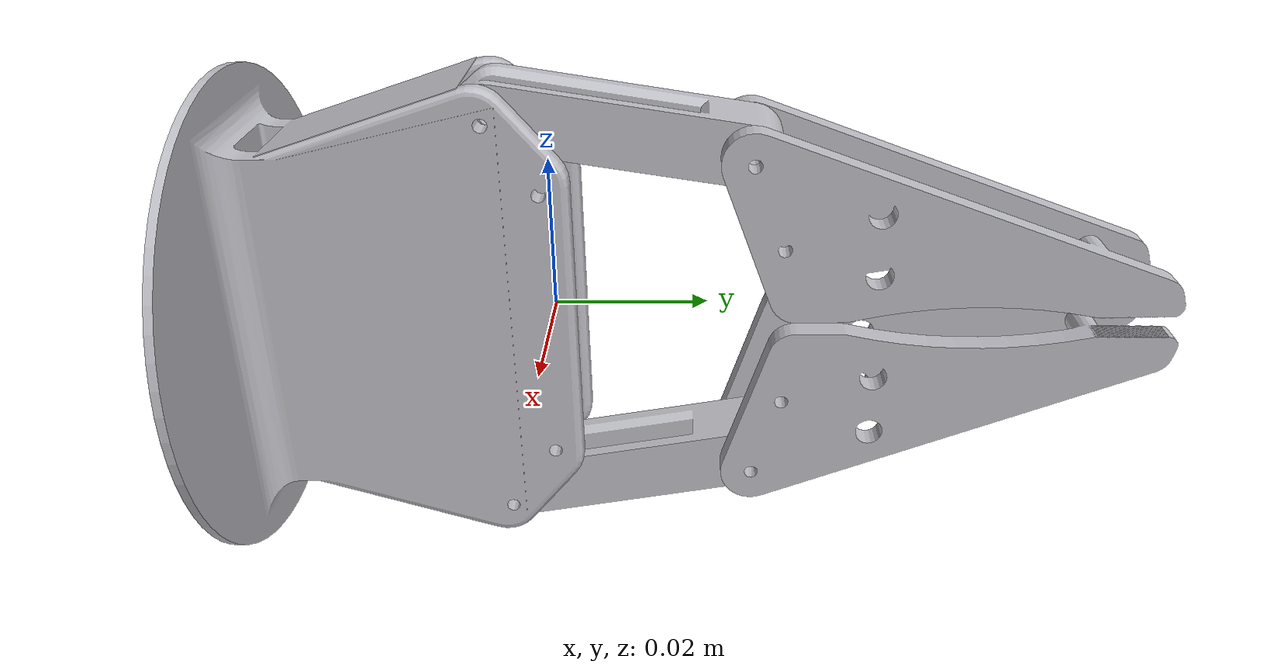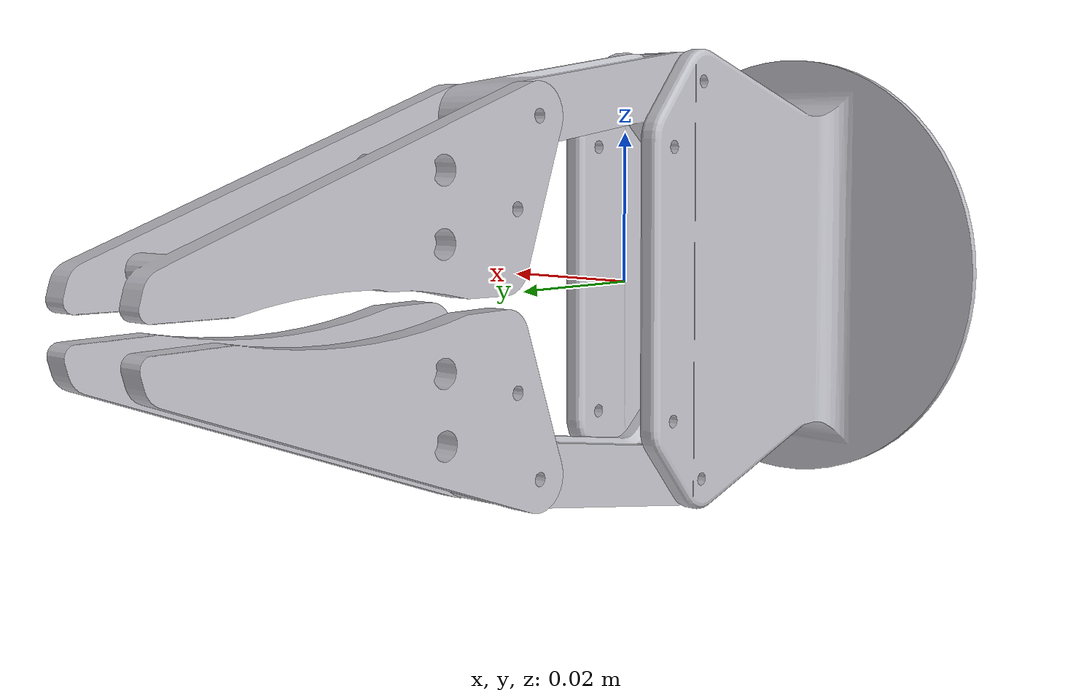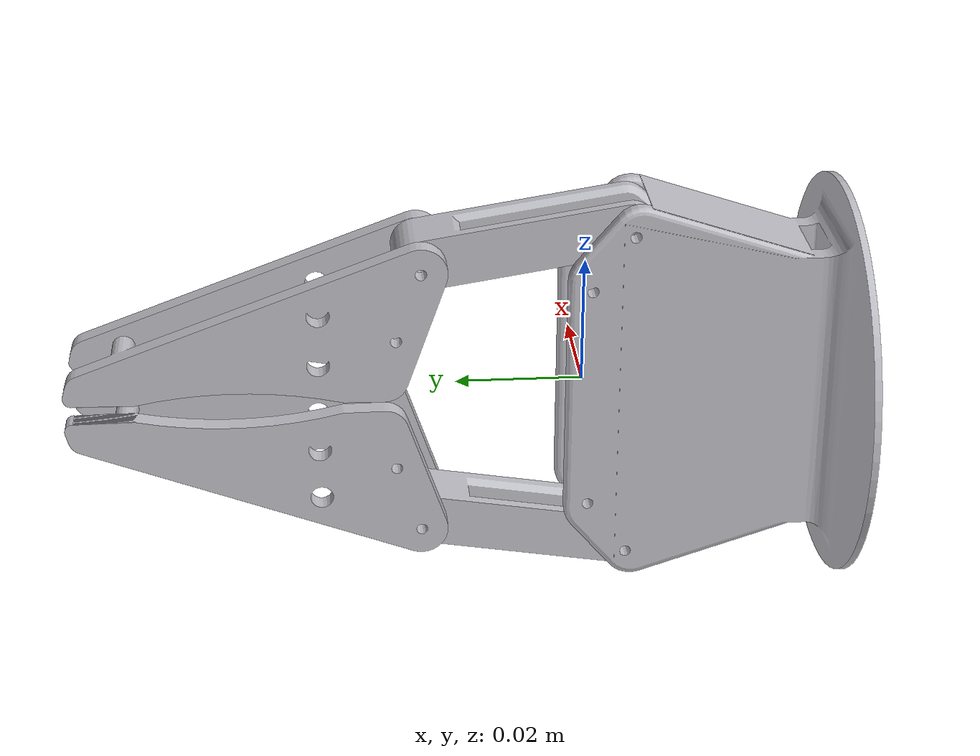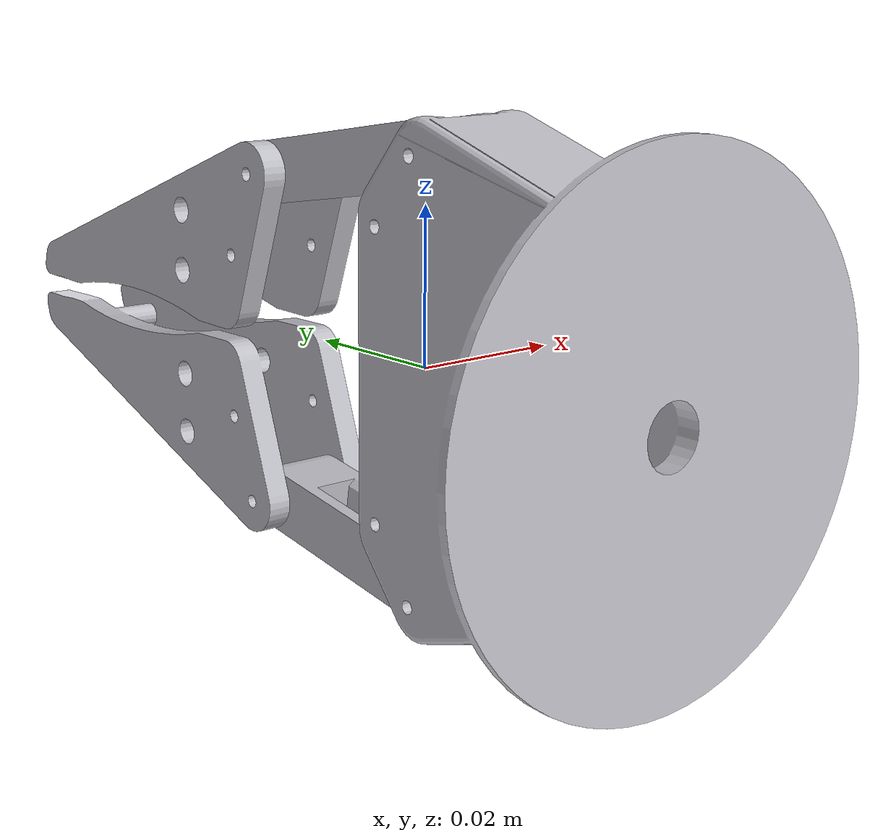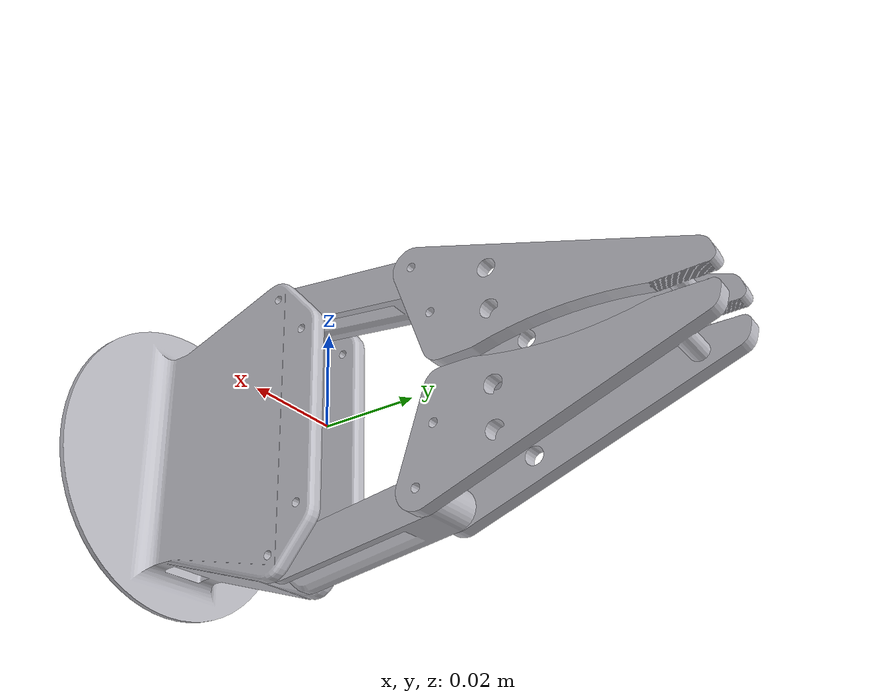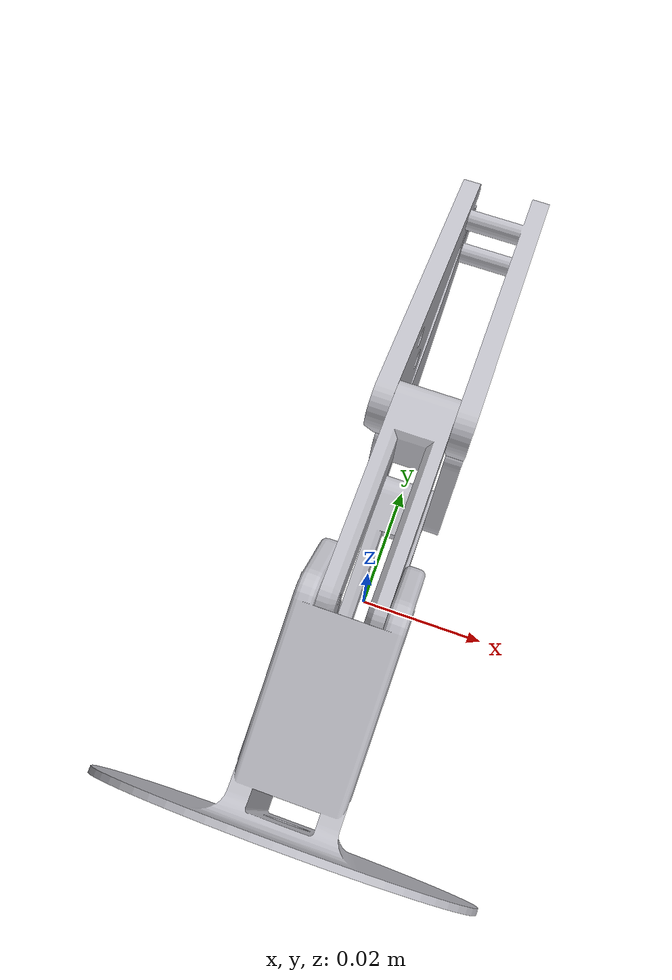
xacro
<?xml version="1.0" ?>
<robot name="apbot_gripper" xmlns:xacro="http://www.ros.org/wiki/xacro">

<xacro:include filename="$(find apbot_gripper_description)/urdf/apbot_gripper.trans" />
<xacro:include filename="$(find apbot_gripper_description)/urdf/apbot_gripper.gazebo" />
<link name="gripper_base_link">
  <inertial>
    <origin rpy="0 0 0" xyz="9.160319814008974e-17 -0.02423998231836639 0.005932572791127643"/>
    <mass value="0.1285784757973692"/>
    <inertia ixx="5.8e-05" ixy="0.0" ixz="-0.0" iyy="4.4e-05" iyz="0.0" izz="3.6e-05"/>
  </inertial>
  <visual>
    <origin rpy="0 0 0" xyz="0 0 -0.006"/>
    <geometry>
      <mesh filename="package://apbot_gripper_description/meshes/base_link.stl" scale="0.001 0.001 0.001"/>
    </geometry>
    <material name="silver"/>
  </visual>
  <collision>
    <origin rpy="0 0 0" xyz="0 0 -0.006"/>
    <geometry>
      <mesh filename="package://apbot_gripper_description/meshes/base_link.stl" scale="0.001 0.001 0.001"/>
    </geometry>
  </collision>
</link>

<link name="finger_left_1">
  <inertial>
    <origin rpy="0 0 0" xyz="-0.0048999999999999695 0.020258383272484165 -0.011397319304167926"/>
    <mass value="0.0394974646315258"/>
    <inertia ixx="1.1e-05" ixy="-0.0" ixz="0.0" iyy="3e-06" iyz="2e-06" izz="1.1e-05"/>
  </inertial>
  <visual>
    <origin rpy="0 0 0" xyz="-0.0049 -0.025497 -0.027454"/>
    <geometry>
      <mesh filename="package://apbot_gripper_description/meshes/finger_left_1.stl" scale="0.001 0.001 0.001"/>
    </geometry>
    <material name="silver"/>
  </visual>
  <collision>
    <origin rpy="0 0 0" xyz="-0.0049 -0.025497 -0.027454"/>
    <geometry>
      <mesh filename="package://apbot_gripper_description/meshes/finger_left_1.stl" scale="0.001 0.001 0.001"/>
    </geometry>
  </collision>
</link>

<link name="finger_right_1">
  <inertial>
    <origin rpy="0 0 0" xyz="0.004899999999999931 -0.005069171500498647 0.03909754484365974"/>
    <mass value="0.039497464631525814"/>
    <inertia ixx="1.1e-05" ixy="-0.0" ixz="-0.0" iyy="3e-06" iyz="-2e-06" izz="1.1e-05"/>
  </inertial>
  <visual>
    <origin rpy="0 0 0" xyz="0.0049 -0.025031 0.015024"/>
    <geometry>
      <mesh filename="package://apbot_gripper_description/meshes/finger_right_1.stl" scale="0.001 0.001 0.001"/>
    </geometry>
    <material name="silver"/>
  </visual>
  <collision>
    <origin rpy="0 0 0" xyz="0.0049 -0.025031 0.015024"/>
    <geometry>
      <mesh filename="package://apbot_gripper_description/meshes/finger_right_1.stl" scale="0.001 0.001 0.001"/>
    </geometry>
  </collision>
</link>

<link name="big_link_1">
  <inertial>
    <origin rpy="0 0 0" xyz="-0.004900000000000005 0.009770588926960123 -0.0020821150166260016"/>
    <mass value="0.019757748002224147"/>
    <inertia ixx="5e-06" ixy="-0.0" ixz="-0.0" iyy="0.0" iyz="0.0" izz="5e-06"/>
  </inertial>
  <visual>
    <origin rpy="0 0 0" xyz="-0.0049 0.006625 -0.032906"/>
    <geometry>
      <mesh filename="package://apbot_gripper_description/meshes/big_link_1.stl" scale="0.001 0.001 0.001"/>
    </geometry>
    <material name="silver"/>
  </visual>
  <collision>
    <origin rpy="0 0 0" xyz="-0.0049 0.006625 -0.032906"/>
    <geometry>
      <mesh filename="package://apbot_gripper_description/meshes/big_link_1.stl" scale="0.001 0.001 0.001"/>
    </geometry>
  </collision>
</link>

<link name="big_link_2">
  <inertial>
    <origin rpy="0 0 0" xyz="-0.004900000000000005 0.009770588926960123 -0.0020821150166260016"/>
    <mass value="0.019757748002224147"/>
    <inertia ixx="5e-06" ixy="-0.0" ixz="-0.0" iyy="0.0" iyz="-0.0" izz="5e-06"/>
  </inertial>
  <visual>
    <origin rpy="0 0 0" xyz="-0.0049 0.0064 0.02"/>
    <geometry>
      <mesh filename="package://apbot_gripper_description/meshes/big_link_2.stl" scale="0.001 0.001 0.001"/>
    </geometry>
    <material name="silver"/>
  </visual>
  <collision>
    <origin rpy="0 0 0" xyz="-0.0049 0.0064 0.02"/>
    <geometry>
      <mesh filename="package://apbot_gripper_description/meshes/big_link_2.stl" scale="0.001 0.001 0.001"/>
    </geometry>
  </collision>
</link>

<joint name="finger_joint_left" type="continuous">
  <origin rpy="0 0 0" xyz="0.0 0.032122 -0.005452"/>
  <parent link="big_link_1"/>
  <child link="finger_left_1"/>
  <axis xyz="-1.0 0.0 -0.0"/>
  <limit lower="0.0" upper="2" velocity="2.0" effort="1000"/>
  <minDepth>0.001</minDepth>
  <mimic joint="knuckle_joint_left" multiplier="1" offset="0"/>
</joint>

<joint name="finger_joint_right" type="continuous">
  <origin rpy="0 0 0" xyz="-0.0098 0.0317 0.004976"/>
  <parent link="big_link_2"/>
  <child link="finger_right_1"/>
  <axis xyz="-1.0 0.0 -0.0"/>
  <limit lower="-2" upper="0" velocity="2.0" effort="1000"/>
  <minDepth>0.001</minDepth>
  <mimic joint="knuckle_joint_left" multiplier="-1" offset="0"/>
</joint>

<joint name="knuckle_joint_left" type="continuous">
  <origin rpy=".01 0 0" xyz="0.0049 -0.0064 0.026906"/>
  <parent link="gripper_base_link"/>
  <child link="big_link_1"/>
  <axis xyz="1.0 -0.0 0.0"/>
  <limit lower="0.0" upper="2" velocity="2.0" effort="1000"/>
  <minDepth>0.001</minDepth>
</joint>

<joint name="knuckle_joint_right" type="continuous">
  <origin rpy="-.01 0 0" xyz="0.0049 -0.0064 -0.026"/>
  <parent link="gripper_base_link"/>
  <child link="big_link_2"/>
  <axis xyz="1.0 -0.0 0.0"/>
  <limit lower="-2" upper="0" velocity="2.0" effort="1000"/>
  <minDepth>0.001</minDepth>
  <mimic joint="knuckle_joint_left" multiplier="-1" offset="0"/>
</joint>

</robot>

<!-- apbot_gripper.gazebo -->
<robot name="apbot_gripper" xmlns:xacro="http://www.ros.org/wiki/xacro" >

<xacro:property name="gripper_base_color" value="Gazebo/Red" />
<xacro:property name="finger_color" value="Gazebo/Yellow" />

<gazebo reference="gripper_base_link">
  <implicitSpringDamper>1</implicitSpringDamper>
  <material>${finger_color}</material>
  <mu1>100000</mu1>
  <mu2>100000</mu2>
  <kp>100000000.0</kp>
  <kd>1.0</kd>
</gazebo>

<gazebo reference="finger_left_1">
  <implicitSpringDamper>1</implicitSpringDamper>
  <material>${finger_color}</material>
  <mu1>100000</mu1>
  <mu2>100000</mu2>
  <kp>1000000.0</kp>
  <kd>10</kd>
</gazebo>

<gazebo reference="finger_right_1">
  <implicitSpringDamper>1</implicitSpringDamper>
  <material>${finger_color}</material>
  <mu1>100000</mu1>
  <mu2>100000</mu2>
  <kp>1000000.0</kp>
  <kd>10</kd>
</gazebo>

<gazebo reference="big_link_1">
  <implicitSpringDamper>1</implicitSpringDamper>
  <material>${finger_color}</material>
  <mu1>100000</mu1>
  <mu2>100000</mu2>
  <kp>100000000.0</kp>
  <kd>1.0</kd>
</gazebo>

<gazebo reference="big_link_2">
  <implicitSpringDamper>1</implicitSpringDamper>
  <material>${finger_color}</material>
  <mu1>100000</mu1>
  <mu2>100000</mu2>
  <kp>100000000.0</kp>
  <kd>1.0</kd>
</gazebo>

</robot>
